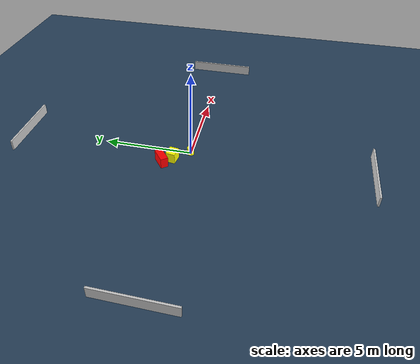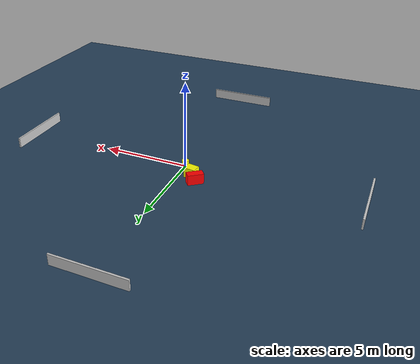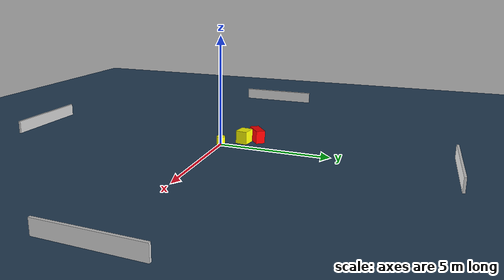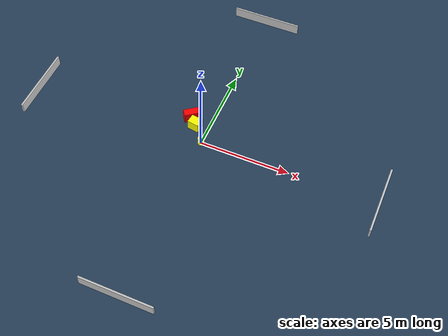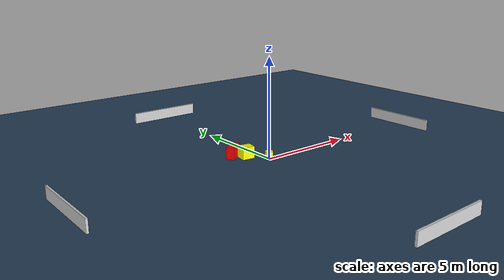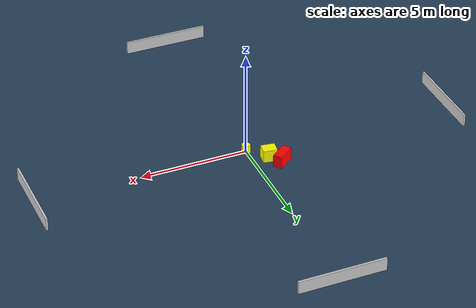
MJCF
<?xml version="1.0" ?>
<mujoco model="generated_environment">
  <option timestep="0.01" integrator="RK4" cone="elliptic"/>
  <default>
    <geom density="1"/>
  </default>
  <asset>
    <texture builtin="gradient" height="3072" name="skybox" rgb1="0.3 0.5 0.7" rgb2="0 0 0" type="skybox" width="512"/>
    <texture builtin="checker" height="300" name="groundplane" rgb1="0.2 0.3 0.4" rgb2="0.1 0.2 0.3" type="2d" width="300"/>
    <material name="groundplane" reflectance="0.2" texrepeat="5 5" texture="groundplane"/>
  </asset>
  <worldbody>
    <light dir="0 0 -1" directional="true" pos="0 0 1.5"/>
    <geom condim="3" friction="0.5 0.005 0.001" material="groundplane" name="floor" pos="0 0 0" size="0 0 0.05" type="plane"/>
    <body name="walls">
      <geom name="wall_1" condim="4" pos="-10.0 0.0 0.3" rgba="0.800000011920929 0.800000011920929 0.800000011920929 1.0" size="0.05 2.0 0.3" type="box"/>
      <geom name="wall_2" condim="4" pos="10.0 0.0 0.3" rgba="0.800000011920929 0.800000011920929 0.800000011920929 1.0" size="0.05 2.0 0.3" type="box"/>
      <geom name="wall_3" condim="4" pos="0.0 -10.0 0.3" rgba="0.800000011920929 0.800000011920929 0.800000011920929 1.0" size="2.0 0.05 0.3" type="box"/>
      <geom name="wall_4" condim="4" pos="0.0 10.0 0.3" rgba="0.800000011920929 0.800000011920929 0.800000011920929 1.0" size="2.0 0.05 0.3" type="box"/>
    </body>
    <body name="robot">
      <joint name="joint_x" type="slide" pos="0 0 0" axis="1 0 0"/>
      <joint name="joint_y" type="slide" pos="0 0 0" axis="0 1 0"/>
      <geom name="robot" type="cylinder" pos="0.0 0.0 0.2" size="0.2 0.2 0.0" mass="5.0" friction="1.0 0.005 0.0001" condim="4" rgba="1.0 1.0 0.0 1.0"/>
    </body>
    <body name="obstacle_1_movable">
      <geom name="obstacle_1_movable" condim="4" pos="-0.7385819494402852 0.8745280368698175 0.3" euler="0 0 81.50763394957967" friction="0.0 0.005 0.001" rgba="1.0 1.0 0.0 1.0" size="0.26568403988000544 0.32518921051756045 0.3" type="box" mass="0.1"/>
      <joint type="free"/>
    </body>
    <body name="obstacle_2_static">
      <geom name="obstacle_2_static" condim="4" pos="-1.1639337501781781 1.383169156877861 0.3" euler="0 0 217.4881920625194" friction="0.0 0.005 0.001" rgba="1.0 0.0 0.0 1.0" size="0.4500099871326588 0.2109397466986978 0.3" type="box"/>
    </body>
  </worldbody>
  <actuator>
    <motor name="actuator_x" joint="joint_x" gear="1" ctrlrange="-1 1"/>
    <motor name="actuator_y" joint="joint_y" gear="1" ctrlrange="-1 1"/>
  </actuator>
</mujoco>
